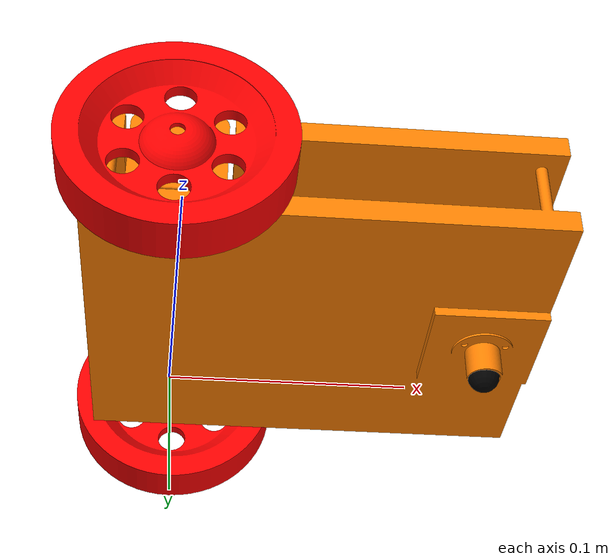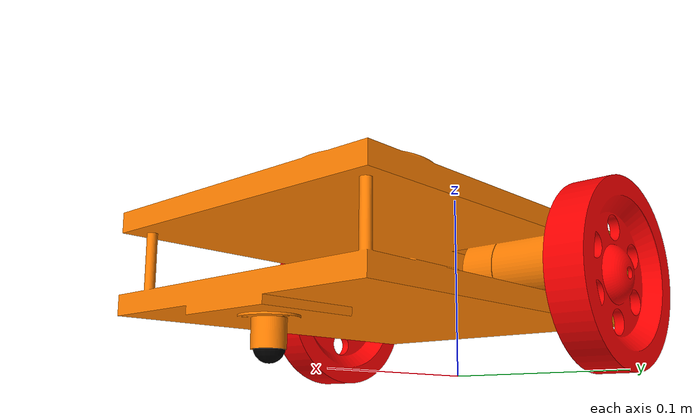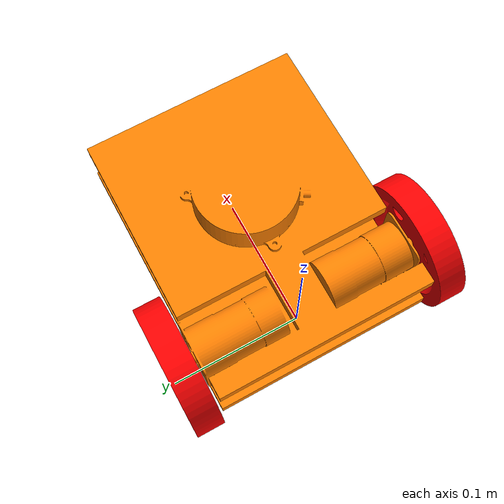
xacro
<robot xmlns:xacro="http://www.ros.org/wiki/xacro">
	<xacro:include filename="wheel.urdf.xacro" />
	<joint name="base_joint" type="fixed">
		<parent link="base_link" />
		<child link="bot_base" />
	</joint>
	<link name="base_link">
	</link>
	<link name="bot_base">
		<visual>
			<origin xyz="0.0615 0.0 0.025" rpy="0.0 0.0 ${pi}" />
			<geometry>
                <mesh filename="package://diff_bot/description/meshes/Base.stl"  />
			</geometry>
			<material name="orange">
				<color rgba="1.0 0.5 0.0 1.0" />
			</material>
		</visual>
		<collision>
			<origin xyz="0.0615 0.0 0.025" rpy="0.0 0.0 ${pi}" />
			<geometry>
                <mesh filename="package://diff_bot/description/meshes/Base.stl"  />
			</geometry>
		</collision>
	</link>
	<xacro:wheel suffix="left" parent="bot_base">
		<origin xyz="0.0 -0.083 0.046" rpy="0.0 0.0 0.0 " />
	</xacro:wheel>
	<xacro:wheel suffix="right" parent="bot_base">
		<origin xyz="0.0 0.083 0.046" rpy="${pi} 0.0 0.0" />
	</xacro:wheel>
	<joint name="castor_joint" type="fixed">
		<parent link="bot_base" />
		<child link="castor_wheel" />
		<axis xyz="0.0 0.0 0.0" />
		<origin xyz="0.135 0.0 0.0075" rpy="0.0 0.0 0.0" />
	</joint>
	<link name="castor_wheel">
		<visual>
			<material name="black">
				<color rgba="0.0 0.0 0.0 1.0" />
			</material>
			<geometry>
				<sphere radius="0.007" />
			</geometry>
		</visual>
		<collision>
			<geometry>
				<sphere radius="0.007" />
			</geometry>
		</collision>
	</link>
</robot>

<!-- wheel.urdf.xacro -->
<robot xmlns:xacro="http://www.ros.org/wiki/xacro">
	<xacro:macro name="wheel" params="suffix *origin parent">
		<joint name="${suffix}_wheel_joint" type="continuous">
			<parent link="${parent}" />
			<child link="${suffix}_wheel_link" />
			<axis xyz="0 0 1" />
			<xacro:insert_block name="origin" />
		</joint>
		<link name="${suffix}_wheel_link">
			<visual>
				<geometry>
                    <mesh filename="package://diff_bot/description/meshes/Wheel.stl" />
				</geometry>
				<material name="red">
					<color rgba="1.0 0.0 0.0 1.0" />
				</material>
			</visual>
			<collision>
				<geometry>
                    <mesh filename="package://diff_bot/description/meshes/Wheel.stl" />
				</geometry>
			</collision>
			<inertial>
				<mass value="0.1" />
				<inertia ixx="0.0001" ixy="0.0" ixz="0.0" iyy="0.0001" iyz="0.0" izz="0.0001" />
			</inertial>
		</link>
	</xacro:macro>
</robot>
